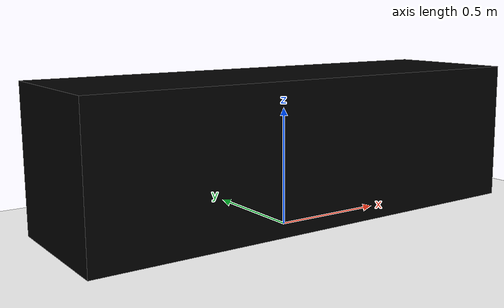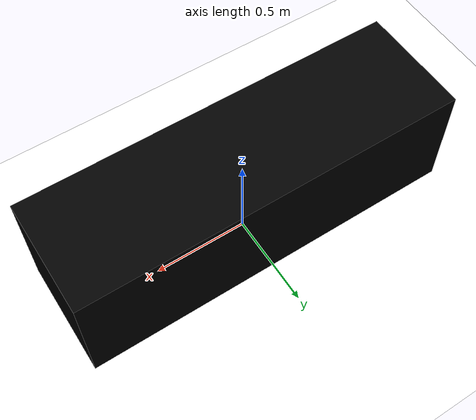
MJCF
<mujoco model="spot_model">
    <worldbody name="base">
        <geom name="ground_plane" type="plane" pos="0 0 -0.1" size="20 20 .05" rgba="1. 1. 1. 0.5" friction="1. 1. 1." />
        <camera name="overhead_camera" pos="0 0.0 20" quat="0.707 0 0 -0.707" />
        <body name="spot" pos="0 0 0.35">
            <joint axis="1 0 0" name="robot_x" type="slide" pos="0 0 0" />
            <joint axis="0 1 0" name="robot_y" type="slide" pos="0 0 0" />
            <joint axis="0 0 1" name="robot_theta" type="hinge" pos="0 0 0" limited="false"/>
            <geom name="spot" type="box" size="1 0.3 0.3" mass="5" rgba="0 0 0 1"/>
            <camera name="frontleft_fisheye" pos="0.415 0.035 0.025" quat="0.5225 0.1448 0.8109 -0.2202" fovy="45" ipd="0.68"/>
            <camera name="frontright_fisheye" pos="0.416 -0.040 0.024" quat="0.5229 -0.1444 0.8087 0.2275" fovy="45" ipd="0.68"/>
            <camera name="left_fisheye" pos="-0.164 0.110 0.036" quat="0.5958 -0.8031 0.0009 0.0026" fovy="45" ipd="0.68"/>
            <camera name="right_fisheye" pos="-0.168 -0.108 0.037" quat="0.6098 0.7925 -0.0056 -0.0061" fovy="45" ipd="0.68"/>
            <camera name="back_fisheye" pos="-0.417 -0.037 0.010" quat="0.4252 -0.5629 -0.5624 0.4314" fovy="45" ipd="0.68"/>
        </body>
    </worldbody>

    <actuator>
        <velocity kv="500" joint="robot_x" name="robot_x" ctrllimited="true" ctrlrange="-20 20" />
        <velocity kv="500" joint="robot_y" name="robot_y" ctrllimited="true" ctrlrange="-20 20" />
        <velocity kv="100" joint="robot_theta" name="robot_theta" ctrllimited="true" ctrlrange="-20 20" />
    </actuator>
</mujoco>
